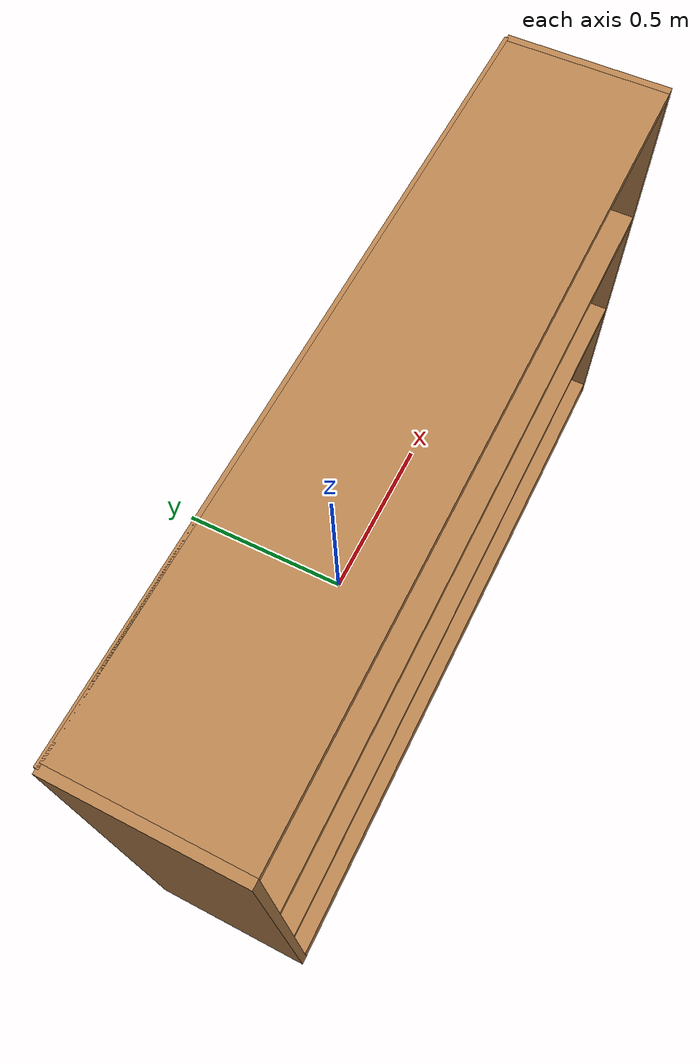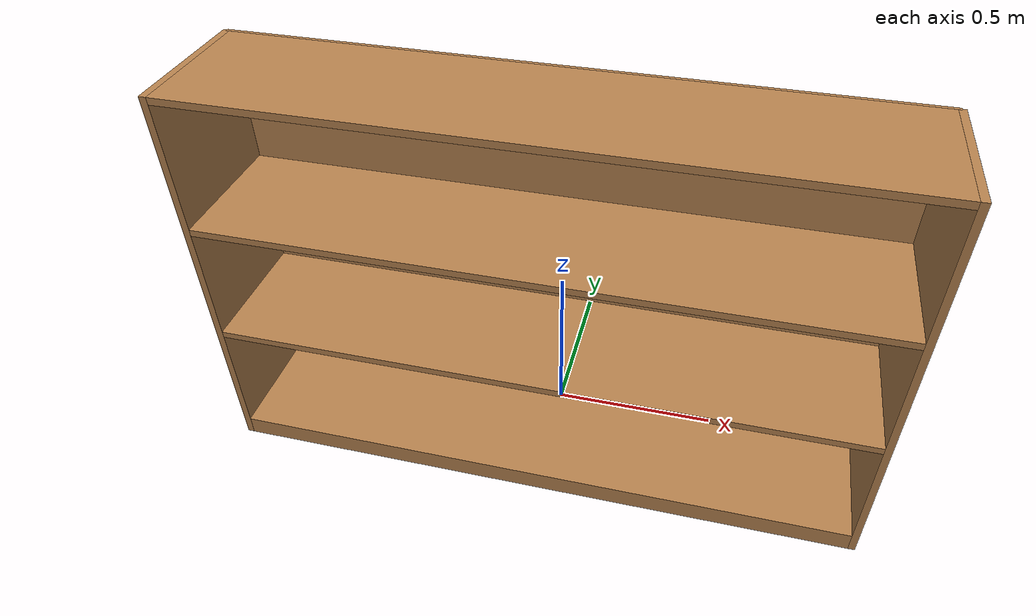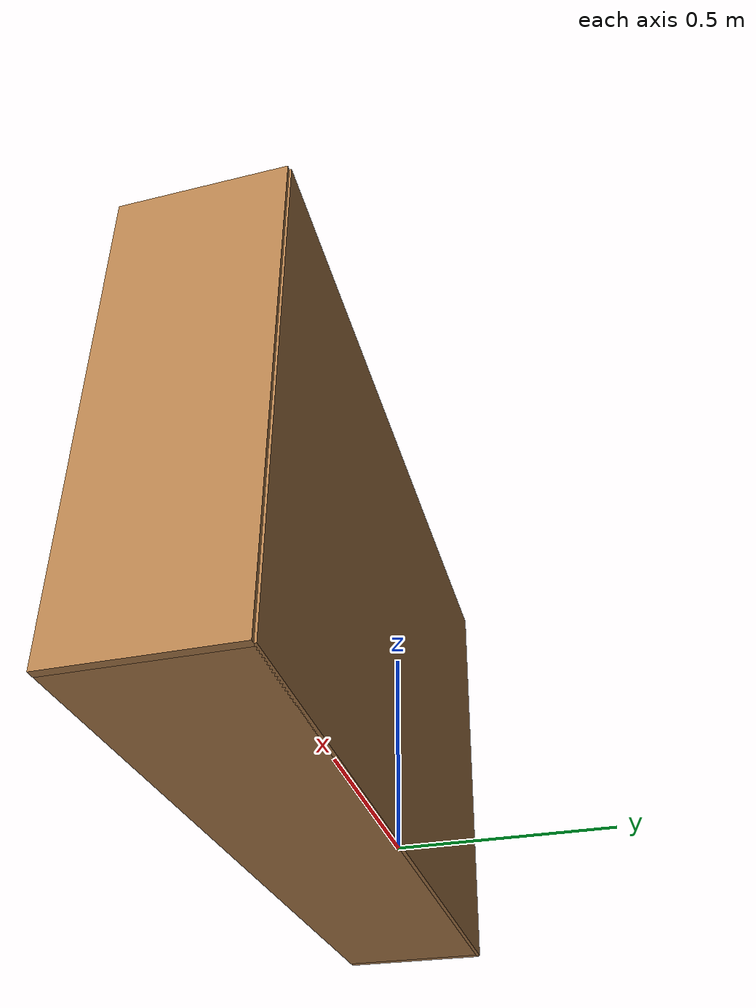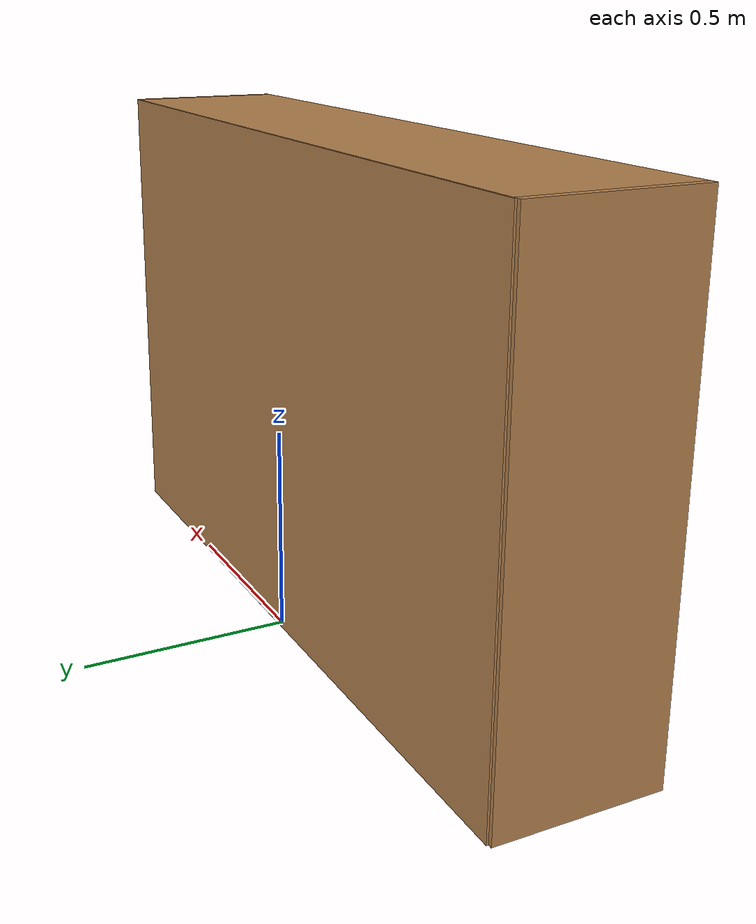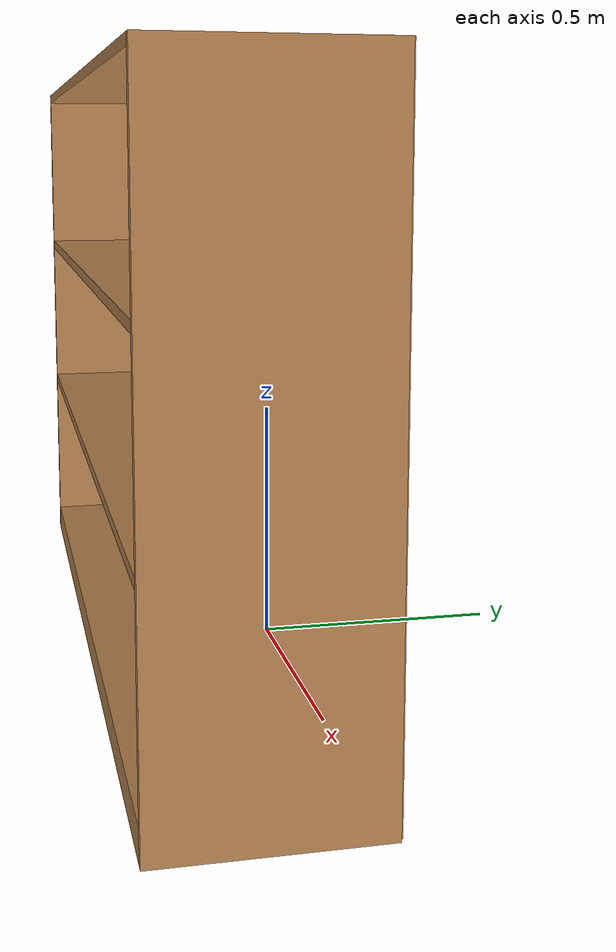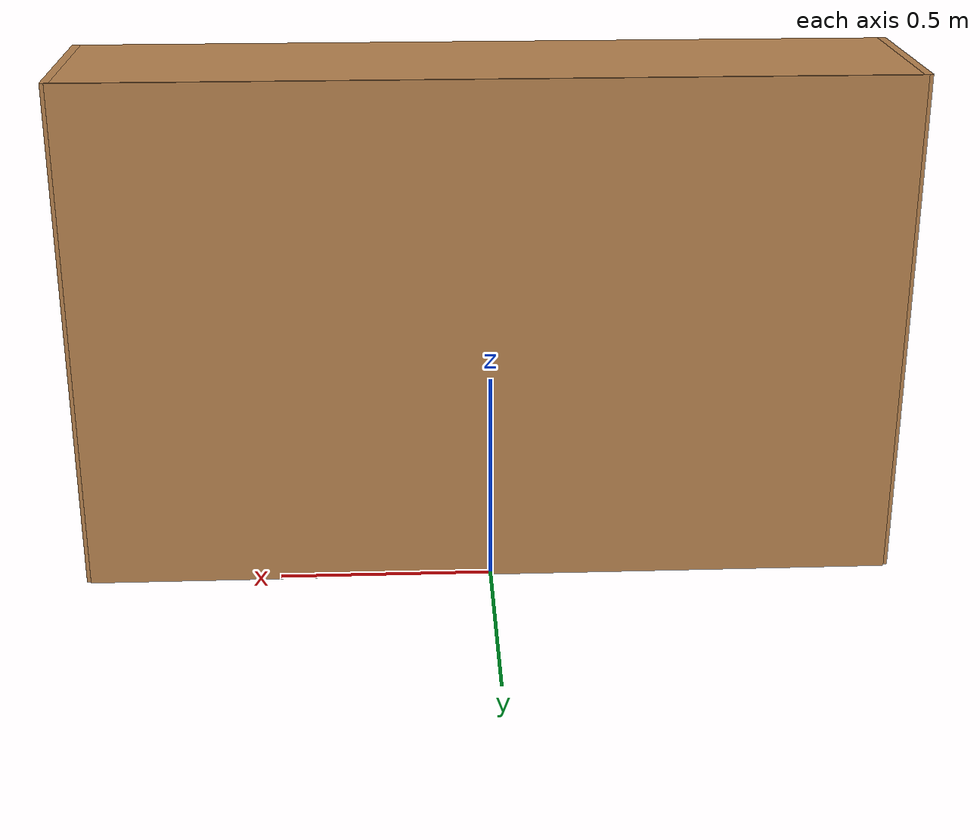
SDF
<?xml version="1.0" ?>
<sdf version="1.5">
  <model name="library_bookshelf_onesided">
    <static>true</static>
    <link name="link">
      <inertial>
        <mass>1.0</mass>
      </inertial>
      <collision name="back">
        <pose>0 0.005 0.6 0 0 0</pose>
        <geometry>
          <box>
            <size>1.9 0.01 1.2</size>
          </box>
        </geometry>
      </collision>
      <visual name="back">
        <pose>0 0.005 0.6 0 0 0</pose>
        <geometry>
          <box>
            <size>1.9 0.01 1.2</size>
          </box>
        </geometry>
        <material>
          <script>
            <uri>file://media/materials/scripts/gazebo.material</uri>
            <name>Gazebo/Wood</name>
          </script>
        </material>
      </visual>
      <collision name="left_side">
        <pose>0.95 -0.195 0.6 0 0 0</pose>
        <geometry>
          <box>
            <size>0.02 0.4 1.2</size>
          </box>
        </geometry>
      </collision>
      <visual name="left_side">
        <pose>0.95 -0.195 0.6 0 0 0</pose>
        <geometry>
          <box>
            <size>0.02 0.4 1.2</size>
          </box>
        </geometry>
        <material>
          <script>
            <uri>file://media/materials/scripts/gazebo.material</uri>
            <name>Gazebo/Wood</name>
          </script>
        </material>
      </visual>
      <collision name="right_side">
        <pose>-0.95 -0.195 0.6 0 0 0</pose>
        <geometry>
          <box>
            <size>0.02 0.4 1.2</size>
          </box>
        </geometry>
      </collision>
      <visual name="right_side">
        <pose>-0.95 -0.195 0.6 0 0 0</pose>
        <geometry>
          <box>
            <size>0.02 0.4 1.2</size>
          </box>
        </geometry>
        <material>
          <script>
            <uri>file://media/materials/scripts/gazebo.material</uri>
            <name>Gazebo/Wood</name>
          </script>
        </material>
      </visual>
      <collision name="bottom">
        <pose>0 -0.195 0.03 0 0 0</pose>
        <geometry>
          <box>
            <size>1.88 0.4 0.06</size>
          </box>
        </geometry>
      </collision>
      <visual name="bottom">
        <pose>0 -0.195 0.03 0 0 0</pose>
        <geometry>
          <box>
            <size>1.88 0.4 0.06</size>
          </box>
        </geometry>
        <material>
          <script>
            <uri>file://media/materials/scripts/gazebo.material</uri>
            <name>Gazebo/Wood</name>
          </script>
        </material>
      </visual>
      <collision name="top">
        <pose>0 -0.195 1.19 0 0 0</pose>
        <geometry>
          <box>
            <size>1.88 0.4 0.02</size>
          </box>
        </geometry>
      </collision>
      <visual name="top">
        <pose>0 -0.195 1.19 0 0 0</pose>
        <geometry>
          <box>
            <size>1.88 0.4 0.02</size>
          </box>
        </geometry>
        <material>
          <script>
            <uri>file://media/materials/scripts/gazebo.material</uri>
            <name>Gazebo/Wood</name>
          </script>
        </material>
      </visual>
      <collision name="low_shelf">
        <pose>0 -0.195 0.43 0 0 0</pose>
        <geometry>
          <box>
            <size>1.88 0.4 0.02</size>
          </box>
        </geometry>
      </collision>
      <visual name="low_shelf">
        <pose>0 -0.195 0.43 0 0 0</pose>
        <geometry>
          <box>
            <size>1.88 0.4 0.02</size>
          </box>
        </geometry>
        <material>
          <script>
            <uri>file://media/materials/scripts/gazebo.material</uri>
            <name>Gazebo/Wood</name>
          </script>
        </material>
      </visual>
      <collision name="high_shelf">
        <pose>0 -0.195 0.8 0 0 0</pose>
        <geometry>
          <box>
            <size>1.88 0.4 0.02</size>
          </box>
        </geometry>
      </collision>
      <visual name="high_shelf">
        <pose>0 -0.195 0.8 0 0 0</pose>
        <geometry>
          <box>
            <size>1.88 0.4 0.02</size>
          </box>
        </geometry>
        <material>
          <script>
            <uri>file://media/materials/scripts/gazebo.material</uri>
            <name>Gazebo/Wood</name>
          </script>
        </material>
      </visual>
    </link>
  </model>
</sdf>
